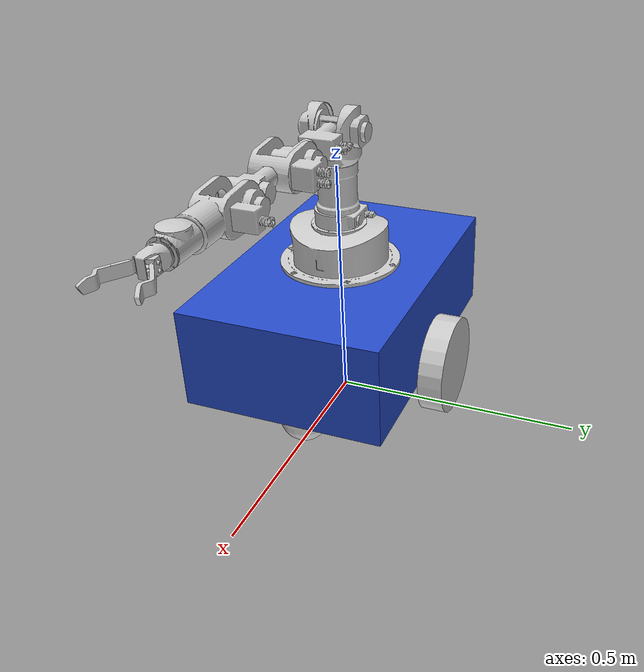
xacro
<?xml version="1.0"?>
<robot xmlns:xacro="http://www.ros.org/wiki/xacro" name="katana400_mobile">
    <xacro:arg name="initial_positions_file" default="initial_positions.yaml" />

    <!-- Import katana400_mobile urdf file -->
    <xacro:include filename="$(find mobile_katana_description)/urdf/katana400_mobile.urdf.xacro" />

    <!-- Import control_xacro -->
    <xacro:include filename="katana400_mobile.ros2_control.xacro" />

    <xacro:katana400_mobile_ros2_control name="FakeSystem" initial_positions_file="$(arg initial_positions_file)"/>

</robot>

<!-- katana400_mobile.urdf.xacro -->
<robot xmlns:xacro="http://ros.org/wiki/xacro"
  name="katana400_mobile">

  <xacro:arg name="use_gazebo" default="false"/>
  <xacro:arg name="use_gazebo_plugin" default="false"/>

  <xacro:include filename="$(find mobile_base_description)/urdf/my_robot.urdf.xacro"/>
  <xacro:include filename="$(find mobile_katana_description)/urdf/controlbox.urdf.xacro"/>
  <xacro:include filename="$(find katana_description)/urdf/katana_400_6m180.urdf.xacro"/>

  <xacro:if value="${'$(arg use_gazebo)' == 'true'}">
    <xacro:include filename="$(find mobile_katana_description)/urdf/mobile_katana_gazebo.urdf.xacro"/>
  </xacro:if>

</robot>

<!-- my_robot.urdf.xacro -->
<robot name="my_robot" xmlns:xacro="http://www.ros.org/wiki/xacro">

    <xacro:include filename="$(find mobile_base_description)/urdf/common_properties.xacro" />
    <xacro:include filename="$(find mobile_base_description)/urdf/mobile_base.xacro" />
    <xacro:include filename="$(find mobile_base_description)/urdf/mobile_base.ros2_control.xacro" />

</robot>

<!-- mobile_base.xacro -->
<robot xmlns:xacro="http://www.ros.org/wiki/xacro">

    <xacro:property name="base_length" value="0.6" />
    <xacro:property name="base_width" value="0.4" />
    <xacro:property name="base_height" value="0.2" />
    <xacro:property name="wheel_radius" value="0.1" />
    <xacro:property name="wheel_length" value="0.05" />

    <link name="base_footprint" />

    <link name="mobile_base_link">
        <visual>
            <geometry>
                <box size="${base_length} ${base_width} ${base_height}" />
            </geometry>
            <origin xyz="0 0 ${base_height / 2.0}" rpy="0 0 0" />
            <material name="blue" />
        </visual>
        <collision>
            <geometry>
                <box size="${base_length} ${base_width} ${base_height}" />
            </geometry>
            <origin xyz="0 0 ${base_height / 2.0}" rpy="0 0 0" />
        </collision>
        <inertial>
            <origin xyz="0 0 ${base_height / 2.0}" rpy="0 0 0" />
            <mass value="5.0" />
            <inertia
                ixx="${(1/12.0) * 5.0 * (base_width**2  + base_height**2)}"
                ixy="0" ixz="0"
                iyy="${(1/12.0) * 5.0 * (base_length**2 + base_height**2)}"
                iyz="0"
                izz="${(1/12.0) * 5.0 * (base_length**2 + base_width**2)}" />
        </inertial>
    </link>

    <xacro:macro name="wheel_link" params="prefix">
        <link name="${prefix}_wheel_link">
            <visual>
                <geometry>
                    <cylinder radius="${wheel_radius}" length="${wheel_length}" />
                </geometry>
                <origin xyz="0 0 0" rpy="${pi / 2.0} 0 0" />
                <material name="grey" />
            </visual>
            <collision>
                <geometry>
                    <cylinder radius="${wheel_radius}" length="${wheel_length}" />
                </geometry>
                <origin xyz="0 0 0" rpy="${pi / 2.0} 0 0" />
            </collision>
            <inertial>
                <origin xyz="0 0 0" rpy="${pi / 2.0} 0 0" />
                <mass value="0.5" />
                <inertia
                    ixx="${(1/12.0) * 0.5 * (3 * wheel_radius**2 + wheel_length**2)}"
                    ixy="0" ixz="0"
                    iyy="${(1/12.0) * 0.5 * (3 * wheel_radius**2 + wheel_length**2)}"
                    iyz="0"
                    izz="${0.5 * 0.5 * wheel_radius**2}" />
            </inertial>
        </link>
    </xacro:macro>

    <xacro:wheel_link prefix="right" />
    <xacro:wheel_link prefix="left" />

    <link name="caster_wheel_link">
        <visual>
            <geometry>
                <sphere radius="${wheel_radius / 2.0}" />
            </geometry>
            <origin xyz="0 0 0" rpy="0 0 0" />
            <material name="grey" />
        </visual>
        <collision>
            <geometry>
                <sphere radius="${wheel_radius / 2.0}" />
            </geometry>
            <origin xyz="0 0 0" rpy="0 0 0" />
        </collision>
        <inertial>
            <origin xyz="0 0 0" rpy="0 0 0" />
            <mass value="0.1" />
            <inertia
                ixx="${(2/5.0) * 0.1 * (wheel_radius / 2.0)**2}"
                ixy="0" ixz="0"
                iyy="${(2/5.0) * 0.1 * (wheel_radius / 2.0)**2}"
                iyz="0"
                izz="${(2/5.0) * 0.1 * (wheel_radius / 2.0)**2}" />
        </inertial>
    </link>

    <link name="rear_caster_wheel_link">
        <visual>
            <geometry>
                <sphere radius="${wheel_radius / 2.0}" />
            </geometry>
            <origin xyz="0 0 0" rpy="0 0 0" />
            <material name="grey" />
        </visual>
        <collision>
            <geometry>
                <sphere radius="${wheel_radius / 2.0}" />
            </geometry>
            <origin xyz="0 0 0" rpy="0 0 0" />
        </collision>
        <inertial>
            <origin xyz="0 0 0" rpy="0 0 0" />
            <mass value="0.1" />
            <inertia
                ixx="${(2/5.0) * 0.1 * (wheel_radius / 2.0)**2}"
                ixy="0" ixz="0"
                iyy="${(2/5.0) * 0.1 * (wheel_radius / 2.0)**2}"
                iyz="0"
                izz="${(2/5.0) * 0.1 * (wheel_radius / 2.0)**2}" />
        </inertial>
    </link>

    <joint name="base_joint" type="fixed">
        <parent link="base_footprint" />
        <child link="mobile_base_link" />
        <origin xyz="0 0 ${wheel_radius}" rpy="0 0 0"/>
    </joint>

    <joint name="base_right_wheel_joint" type="continuous">
        <parent link="mobile_base_link" />
        <child link="right_wheel_link" />
        <origin xyz="0 ${-(base_width + wheel_length) / 2.0} 0" rpy="0 0 0" />
        <axis xyz="0 1 0" />
    </joint>

    <joint name="base_left_wheel_joint" type="continuous">
        <parent link="mobile_base_link" />
        <child link="left_wheel_link" />
        <origin xyz="0 ${(base_width + wheel_length) / 2.0} 0" rpy="0 0 0" />
        <axis xyz="0 1 0" />
    </joint>

    <joint name="base_caster_wheel_joint" type="fixed">
        <parent link="mobile_base_link" />
        <child link="caster_wheel_link" />
        <origin xyz="${base_length / 3.0} 0 ${-wheel_radius / 2.0}" rpy="0 0 0" />
    </joint>

    <joint name="base_rear_caster_wheel_joint" type="fixed">
        <parent link="mobile_base_link" />
        <child link="rear_caster_wheel_link" />
        <origin xyz="${-base_length / 3.0} 0 ${-wheel_radius / 2.0}" rpy="0 0 0" />
    </joint>

    <!-- Drive wheels: high friction so they grip the ground instead of slipping -->
    <gazebo reference="right_wheel_link">
        <mu1>10.0</mu1>
        <mu2>10.0</mu2>
        <kp>1.0e6</kp>
        <kd>1.0</kd>
        <minDepth>0.001</minDepth>
        <maxVel>0.01</maxVel>
    </gazebo>
    <gazebo reference="left_wheel_link">
        <mu1>10.0</mu1>
        <mu2>10.0</mu2>
        <kp>1.0e6</kp>
        <kd>1.0</kd>
        <minDepth>0.001</minDepth>
        <maxVel>0.01</maxVel>
    </gazebo>

    <!-- Casters: near-zero friction so they pivot freely without fighting the drive wheels -->
    <gazebo reference="caster_wheel_link">
        <mu1>0.001</mu1>
        <mu2>0.001</mu2>
    </gazebo>
    <gazebo reference="rear_caster_wheel_link">
        <mu1>0.001</mu1>
        <mu2>0.001</mu2>
    </gazebo>

</robot>

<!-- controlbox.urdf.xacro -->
<robot xmlns:xacro="http://ros.org/wiki/xacro" >

  <xacro:property name="M_PI" value="3.1415926535897931" />
  <xacro:property name="controlbox_height" value="0.073" />

  <link name="katana_internal_controlbox_link">
    <visual>
      <origin xyz="0 0 0" rpy="0 0 ${M_PI}" />
      <geometry>
        <mesh filename="package://katana_description/meshes/katana/katana_internal_controlbox.stl" />
      </geometry>

      <material name="grey" />
    </visual>
    <collision>
      <origin xyz="0 0 0" rpy="0 0 ${M_PI}" />
      <geometry>
        <mesh filename="package://katana_description/meshes/katana/katana_internal_controlbox.stl" />
      </geometry>
    </collision>
    <inertial>
      <mass value="4.47057045" />
      <origin xyz="0.000024 -0.006508 0.030555" />
      <inertia ixx="0.013760086" ixy="-0.000000539" ixz="-0.000000442"
        iyy="0.015251808" iyz="0.000361753"
        izz="0.023409309" />
    </inertial>
  </link>

  <joint name="katana_base_joint" type="fixed">
    <parent link="katana_internal_controlbox_link"/>
    <child link="katana_base_link"/>
    <origin xyz="0 0 ${controlbox_height}"/>
  </joint>

  <joint name="mobile_mount_joint" type="fixed">
    <parent link="mobile_base_link"/>
    <child link="katana_internal_controlbox_link"/>
    <origin xyz="0 0 0.2"/>
  </joint>

</robot>

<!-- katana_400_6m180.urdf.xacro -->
<robot xmlns:xacro="http://ros.org/wiki/xacro"
  name="katana_400_6m180">

  <xacro:arg name="use_gazebo" default="false"/>
  <!-- use_gazebo_plugin: set false when another URDF provides the GazeboSimROS2ControlPlugin
       (e.g. the combined mobile+arm setup which needs a single plugin for all joints). -->
  <xacro:arg name="use_gazebo_plugin" default="true"/>
  <xacro:if value="${'$(arg use_gazebo)' == 'true'}">
    <xacro:include filename="$(find katana_description)/urdf/transmissions.urdf.xacro"/>
    <xacro:if value="${'$(arg use_gazebo_plugin)' == 'true'}">
      <xacro:include filename="$(find katana_description)/urdf/gazebo.urdf.xacro"/>
    </xacro:if>
  </xacro:if>

  <xacro:property name="M_PI" value="3.1415926535897931" />

  <!-- all values from the katana manual -->
  <xacro:property name="base_height" value="0.2015" />
  <xacro:property name="link2_length" value="0.19" />
  <xacro:property name="link3_length" value="0.191" />
  <xacro:property name="link4_length" value="0.1523" />
  <xacro:property name="link5_length" value="0.1505" />

  <!-- All inertial values (mass, center of mass and inertia tensor) have been
       calculated from the meshes using MeshLab -->
  <!-- the effort limits have been measured experimentally from the maximum effort the Gazebo controller
       uses in normal conditions -->

  <link name="katana_base_link">
    <visual>
      <origin xyz="0 0 0" rpy="0 0 0" />
      <geometry>
        <mesh filename="package://katana_description/meshes/katana/katana_base_link.stl"/>
      </geometry>

      <material name="grey">
        <color rgba="0.8 0.8 0.8 1"/>
      </material>
    </visual>
    <collision>
      <origin xyz="0 0 0" rpy="0 0 0" />
      <geometry>
        <mesh filename="package://katana_description/meshes/katana/katana_base_link.stl"/>
      </geometry>
    </collision>
    <inertial>
      <mass value="1.4047990875" />
      <origin xyz="-0.000327 0.000908 0.058457"/>
      <inertia ixx="0.003000703" ixy="0.000000864" ixz="-0.000011312"
        iyy="0.002974822" iyz="0.000036294"
        izz="0.001434739" />
    </inertial>
  </link>

  <joint name="katana_motor1_pan_joint" type="revolute">
    <!-- Joint 1 in Katana Manual -->
    <parent link="katana_base_link"/>
    <child link="katana_motor1_pan_link" />
    <origin xyz="0 0 ${base_height}" rpy="0 0 0"/>
    <axis xyz="0 0 1"/>
    <limit effort="1.5" lower="-3.05" upper="2.891097" velocity="2.208932"/>
  </joint>

  <link name="katana_motor1_pan_link">
    <visual>
      <origin xyz="0 0 ${-base_height}" rpy="0 0 0" />
      <geometry>
        <mesh filename="package://katana_description/meshes/katana/katana_motor1_pan_link.stl"/>
      </geometry>

      <material name="grey" />
    </visual>
    <collision>
      <origin xyz="0 0 ${-base_height}" rpy="0 0 0" />
      <geometry>
        <mesh filename="package://katana_description/meshes/katana/katana_motor1_pan_link.stl"/>
      </geometry>
    </collision>
    <inertial>
      <mass value="0.74793301875" />
      <origin xyz="-0.000410 -0.001285 -0.016774" />
      <inertia ixx="0.001737241" ixy="0.000000421" ixz="0.000000650"
        iyy="0.000998782" iyz="0.000016114"
        izz="0.001349170" />
    </inertial>
  </link>

  <joint name="katana_motor2_lift_joint" type="revolute">
    <!-- Joint 2 in Katana Manual -->
    <parent link="katana_motor1_pan_link" />
    <child link="katana_motor2_lift_link" />
    <origin xyz="0 0 0" rpy="${M_PI/2} 0 0"/>
    <axis xyz="0 0 1"/>
    <limit effort="0.6" lower="-0.135228" upper="2.20"  velocity="1.190799"/>
  </joint>

  <link name="katana_motor2_lift_link">
    <visual>
      <origin rpy="${-M_PI/2} 0 0" xyz="0 0 0"/>
      <geometry>
        <mesh filename="package://katana_description/meshes/katana/katana_motor2_lift_link.stl"/>
      </geometry>

        <material name="grey" />
      </visual>
      <collision>
        <origin rpy="${-M_PI/2} 0 0" xyz="0 0 0"/>
        <geometry>
          <mesh filename="package://katana_description/meshes/katana/katana_motor2_lift_link.stl"/>
        </geometry>
      </collision>
      <inertial>
        <mass value="0.80174941875" />
        <origin xyz="0.092420 0.005283 0.000172"/>
        <inertia ixx="0.000478252" ixy="0.000081166" ixz="0.000003961"
          iyy="0.004314636" iyz="0.000000332"
          izz="0.004625444" />
      </inertial>
    </link>

    <joint name="katana_motor3_lift_joint" type="revolute">
      <!-- Joint 3 in Katana Manual -->
      <parent link="katana_motor2_lift_link" />
      <child  link="katana_motor3_lift_link" />
      <origin xyz="${link2_length} 0 0" rpy="0 0 0"/>
      <axis xyz="0 0 1"/>
      <!-- unexplicably, the measured velocity limit of this motor is exactly half of what vel_enc2rad(180) says -->
      <limit effort="0.25" lower="-2.221804" upper="2.054223"  velocity="1.190799"/>
    </joint>

    <link name="katana_motor3_lift_link">
      <visual>
        <origin rpy="${-M_PI/2} 0 0" xyz="0 0 0"/>
        <geometry>
          <mesh filename="package://katana_description/meshes/katana/katana_motor3_lift_link.stl"/>
        </geometry>

        <material name="grey" />
      </visual>
      <collision>
        <origin rpy="${-M_PI/2} 0 0" xyz="0 0 0"/>
        <geometry>
          <mesh filename="package://katana_description/meshes/katana/katana_motor3_lift_link.stl"/>
        </geometry>
      </collision>
      <inertial>
        <mass value="0.79241664375" />
        <origin xyz="0.058036 0.008963 -0.000187"/>
        <inertia ixx="0.001156089" ixy="0.000112877" ixz="-0.000004398"
          iyy="0.002305646" iyz="-0.000000036"
          izz="0.003128648" />
      </inertial>
    </link>

    <joint name="katana_motor4_lift_joint" type="revolute">
      <!-- Joint 4 in Katana Manual -->
      <parent link="katana_motor3_lift_link" />
      <child  link="katana_motor4_lift_link" />
      <origin rpy="${M_PI} 0 0" xyz="${link3_length} 0 0"/>
      <axis xyz="0 0 1"/>
      <limit effort="0.1" lower="-2.033309" upper="1.876133"  velocity="2.208932"/>
    </joint>

    <link name="katana_motor4_lift_link">
      <visual>
        <origin rpy="${M_PI/2} 0 0" xyz="0 0 0"/>
        <geometry>
          <mesh filename="package://katana_description/meshes/katana/katana_motor4_lift_link.stl"/>
        </geometry>

        <material name="grey" />
      </visual>
      <collision>
        <origin rpy="${M_PI/2} 0 0" xyz="0 0 0"/>
        <geometry>
          <mesh filename="package://katana_description/meshes/katana/katana_motor4_lift_link.stl"/>
        </geometry>
      </collision>
      <inertial>
        <mass value="0.69149323125" />
        <origin xyz="0.050401 0.005807 0.000000"/>
        <inertia ixx="0.000765999" ixy="0.000045260" ixz="-0.000001210"
          iyy="0.001504115" iyz="0.000000147"
          izz="0.001887277" />
      </inertial>
    </link>

    <joint name="katana_motor5_wrist_roll_joint" type="revolute">
      <!-- Joint 5 in Katana Manual -->
      <parent link="katana_motor4_lift_link" />
      <child  link="katana_motor5_wrist_roll_link" />
      <origin rpy="${M_PI/2} 0 ${-M_PI/2}" xyz="${link4_length} 0 0"/>
      <axis xyz="0 0 1"/>
      <limit effort="0.01" lower="-2.993240" upper="2.870985"  velocity="2.208932"/>
    </joint>

    <link name="katana_motor5_wrist_roll_link">
      <visual>
        <origin rpy="0 ${M_PI} 0" xyz="0 0 0"/>
        <geometry>
          <mesh filename="package://katana_description/meshes/katana/katana_motor5_wrist_roll_link.stl"/>
        </geometry>

        <material name="grey" />
      </visual>
      <collision>
        <origin rpy="0 ${M_PI} 0" xyz="0 0 0"/>
        <geometry>
          <mesh filename="package://katana_description/meshes/katana/katana_motor5_wrist_roll_link.stl"/>
        </geometry>
      </collision>
      <inertial>
        <mass value="0.25622555625" />
        <origin xyz="-0.003140899 0.000013920 0.001680144"/>
        <inertia ixx="0.000120481" ixy="0.000000015" ixz="-0.000001089"
          iyy="0.000132130" iyz="-0.000000124"
          izz="0.000093522" />
      </inertial>
    </link>

    <joint name="katana_gripper_joint" type="fixed">
      <parent link="katana_motor5_wrist_roll_link" />
      <child link="katana_gripper_link" />
      <origin rpy="0 ${M_PI/2} 0" xyz="0 0 -0.0323"/>
    </joint>

    <link name="katana_gripper_link">
      <visual>
        <origin rpy="0 ${M_PI} 0" xyz="0 0 0"/>
        <geometry>
          <mesh filename="package://katana_description/meshes/katana/katana_gripper_link.stl"/>
        </geometry>

        <material name="grey" />
      </visual>
      <collision>
        <origin rpy="0 ${M_PI} 0" xyz="0 0 0"/>
        <geometry>
          <mesh filename="package://katana_description/meshes/katana/katana_gripper_link.stl"/>
        </geometry>
      </collision>
      <inertial>
        <mass value="0.0552136183596" />
        <origin xyz="-0.014379 -0.000000 0.000006"/>
        <inertia ixx="0.000011468" ixy="0.000000000" ixz="0.000000007"
          iyy="0.000013830" iyz="0.000000000"
          izz="0.000011290" /></inertial>
    </link>

    <xacro:macro name="finger" params="prefix rotate mimic:=''">
      <joint name="katana_${prefix}_finger_joint" type="revolute">
        <parent link="katana_gripper_link" />
        <child  link="katana_${prefix}_finger_link" />
        <origin rpy="${rotate} 0 0" xyz="0.034 0 0"/>
        <axis xyz="0 0 1"/>
        <limit effort="0.5" lower="-0.46" upper="0.31"  velocity="0.718834"/>
        <xacro:unless value="${mimic == ''}">
          <mimic joint="${mimic}" multiplier="1.0" offset="0.0"/>
        </xacro:unless>
      </joint>

      <link name="katana_${prefix}_finger_link">
        <visual>
          <origin rpy="0 ${M_PI} 0" xyz="0 0 0"/>
          <geometry>
            <mesh filename="package://katana_description/meshes/katana/katana_gripper_${prefix}_finger.stl"/>
          </geometry>

          <material name="grey" />
        </visual>
        <collision>
          <origin rpy="0 ${M_PI} 0" xyz="0 0 0"/>
          <geometry>
            <mesh filename="package://katana_description/meshes/katana/katana_gripper_${prefix}_finger.stl"/>
          </geometry>
        </collision>
        <inertial>
          <mass value="0.0251722230462" />
          <origin xyz="${0.034 + (-0.032216)} 0.025167 -.001603"/>
          <inertia ixx="0.000005990" ixy="0.000008473" ixz="0.000001448"
            iyy="0.000019757" iyz="-0.000000996"
            izz="0.000023588" />
        </inertial>
      </link>
    </xacro:macro>

    <xacro:finger prefix="r" rotate="0" mimic="katana_l_finger_joint" />
    <xacro:finger prefix="l" rotate="${M_PI}" />

    <joint name="katana_gripper_tool_frame_joint" type="fixed">
      <parent link="katana_motor5_wrist_roll_link"/>
      <child link="katana_gripper_tool_frame" />
      <origin xyz="0 0 -${link5_length}" rpy="0 ${M_PI/2} 0"/>
    </joint>

    <link name="katana_gripper_tool_frame">
      <!-- This is the coordinate system of the tool (this is the position
         used in IK etc., relative to the base frame); there is no actual
         arm part attached to this link -->
  </link>

  <joint name="katana_base_frame_joint" type="fixed">
    <parent link="katana_base_link"/>
    <child link="katana_base_frame" />
    <origin xyz="0 0 ${base_height}" rpy="0 0 0"/>
  </joint>

  <link name="katana_base_frame">
    <!-- This is the reference coordinate system of the arm (the KNI kinematics are specified
         in this frame); there is no actual arm part attached to this link -->
  </link>

</robot>
